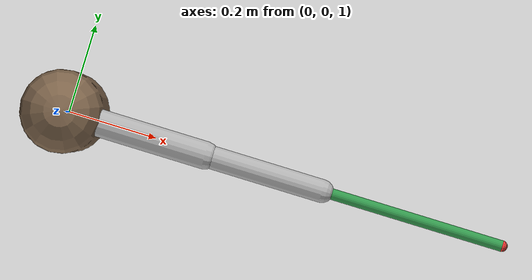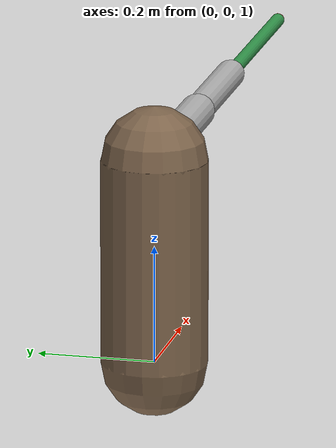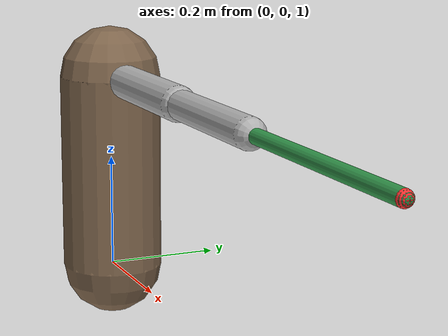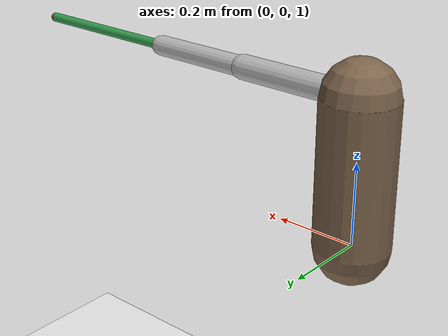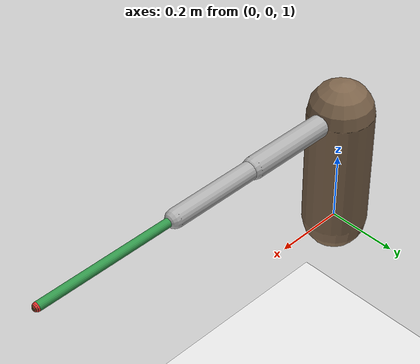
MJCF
<?xml version="1.0" encoding="utf-8"?>
<mujoco model="trunk_arm_wrist">
  <compiler angle="degree" coordinate="local"/>
  <option timestep="0.002" gravity="0 0 -9.81" integrator="RK4"/>
  <default>
    <joint damping="0.2" limited="true"/>
    <geom type="capsule" rgba="0.7 0.7 0.7 1" density="1050" friction="0.8 0.1 0.1"/>
  </default>

  <worldbody>
    <light pos="0 0 4"/>
    <geom name="ground" type="plane" size="3 3 0.1" rgba="0.9 0.9 0.9 1"/>

    <body name="trunk" pos="0 0 1.0">
      <joint name="trunk_yaw" type="hinge" axis="0 0 1" range="-90 90" damping="0.2"/>
      <geom name="trunk_geom" fromto="0 0 0 0 0 0.35" size="0.09" rgba="0.5 0.4 0.3 1"/>

      <body name="shoulder" pos="0 0 0.35">
        <joint name="shoulder_pitch" type="hinge" axis="0 1 0" range="-120 120"/>
        <geom name="upperarm" fromto="0 0 0 0.32 0 0" size="0.03" density="1050"/>
        <body name="elbow" pos="0.32 0 0">
          <joint name="elbow_pitch" type="hinge" axis="0 1 0" range="0 150"/>
          <geom name="forearm" fromto="0 0 0 0.26 0 0" size="0.025" density="1050"/>
          <body name="wrist" pos="0.26 0 0">
            <joint name="wrist_ps" type="hinge" axis="1 0 0" range="-120 120"/>
            <site name="hand" pos="0 0 0" size="0.015" rgba="0.2 0.2 1 1"/>
            <geom name="racket_shaft" fromto="0 0 0 0.40 0 0" size="0.012" rgba="0.2 0.6 0.3 1"/>
            <site name="racket_tip" pos="0.40 0 0" size="0.012" rgba="1 0.2 0.2 1"/>
          </body>
        </body>
      </body>
    </body>
  </worldbody>

  <actuator>
    <motor name="m_trunk" joint="trunk_yaw" ctrllimited="true" ctrlrange="-80 80" gear="1"/>
    <motor name="m_shoulder" joint="shoulder_pitch" ctrllimited="true" ctrlrange="-60 60" gear="1"/>
    <motor name="m_elbow" joint="elbow_pitch" ctrllimited="true" ctrlrange="-60 60" gear="1"/>
    <motor name="m_wrist" joint="wrist_ps" ctrllimited="true" ctrlrange="-20 20" gear="1"/>
  </actuator>
</mujoco>
